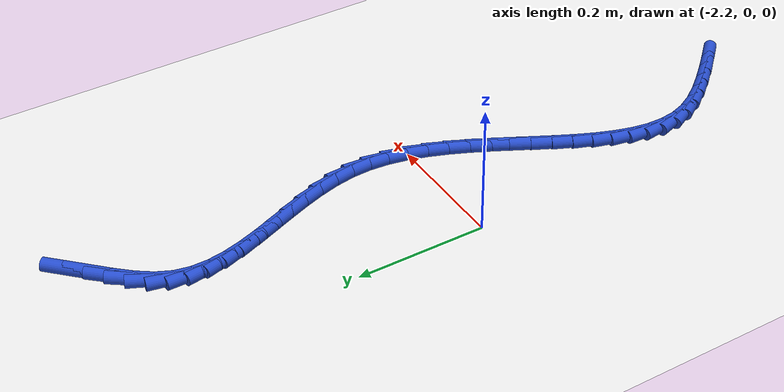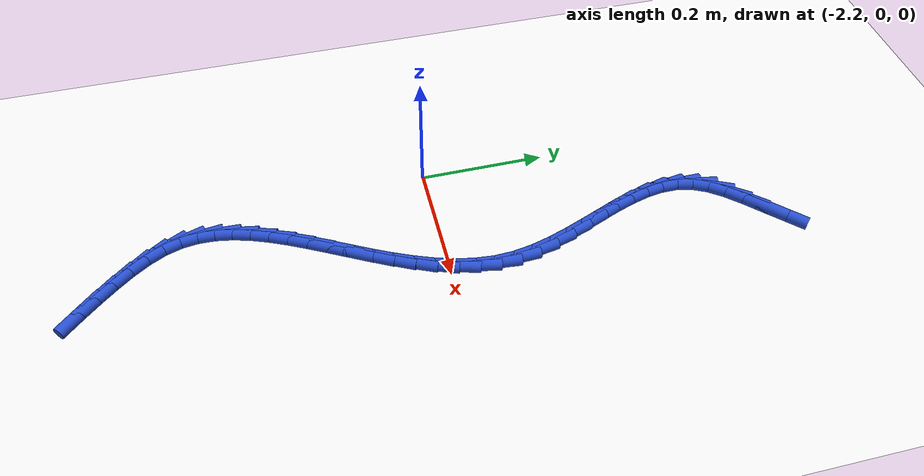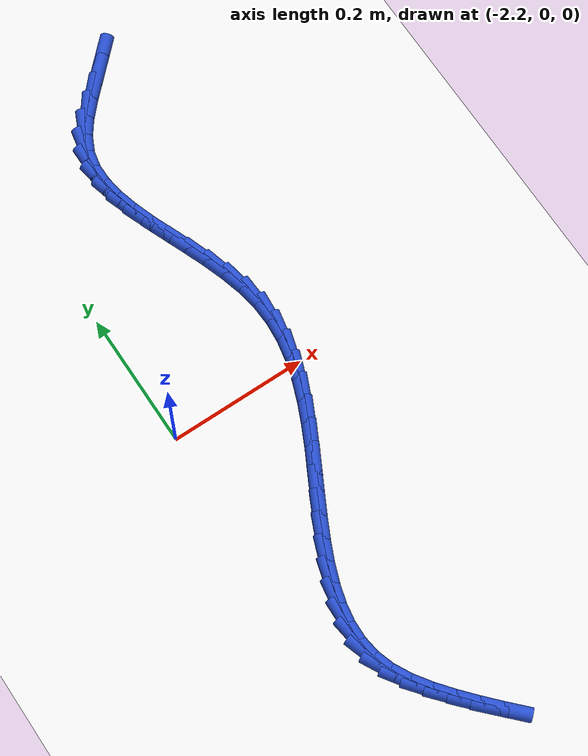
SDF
<sdf version="1.6">
 <world name="default">
  <model name="ground_plane">
   <static>1</static>
   <link name="link">
    <collision name="collision">
     <geometry><plane><normal>0 0 1</normal><size>100 100</size></plane></geometry>
     <surface><friction><ode><mu>100</mu><mu2>50</mu2></ode></friction></surface>
    </collision>
    <visual name="visual">
     <cast_shadows>0</cast_shadows>
     <geometry><plane><normal>0 0 1</normal><size>100 100</size></plane></geometry>
     <material>
      <script><uri>file://media/materials/scripts/gazebo.material</uri><name>Gazebo/WhiteGlow</name></script>
     </material>
    </visual>
   </link>
  </model>
  <model name="line">
   <link name="link_100">
    <pose>-1.9871449884132277 0.5292139198535633 0.01 0 1.57 0.7855690518795939</pose>
    <collision name="collision">
     <geometry><cylinder><radius>0.01</radius><length>0.08</length></cylinder></geometry>
    </collision>
    <visual name="visual">
     <material>
      <script><name>Gazebo/Blue</name><uri>file://media/materials/scripts/gazebo.material</uri></script>
     </material>
     <geometry><cylinder><radius>0.01</radius><length>0.08</length></cylinder></geometry>
    </visual>
   </link>
   <link name="link_101">
    <pose>-2.0093141122908245 0.5070372177850073 0.01 0 1.57 0.7847143369758246</pose>
    <collision name="collision">
     <geometry><cylinder><radius>0.01</radius><length>0.08</length></cylinder></geometry>
    </collision>
    <visual name="visual">
     <material>
      <script><name>Gazebo/Blue</name><uri>file://media/materials/scripts/gazebo.material</uri></script>
     </material>
     <geometry><cylinder><radius>0.01</radius><length>0.08</length></cylinder></geometry>
    </visual>
   </link>
   <link name="link_102">
    <pose>-2.0312313401335857 0.4851499446220889 0.01 0 1.57 0.8341021996968034</pose>
    <collision name="collision">
     <geometry><cylinder><radius>0.01</radius><length>0.08</length></cylinder></geometry>
    </collision>
    <visual name="visual">
     <material>
      <script><name>Gazebo/Blue</name><uri>file://media/materials/scripts/gazebo.material</uri></script>
     </material>
     <geometry><cylinder><radius>0.01</radius><length>0.08</length></cylinder></geometry>
    </visual>
   </link>
   <link name="link_103">
    <pose>-2.051228808603611 0.463103129157674 0.01 0 1.57 0.9439300058625477</pose>
    <collision name="collision">
     <geometry><cylinder><radius>0.01</radius><length>0.08</length></cylinder></geometry>
    </collision>
    <visual name="visual">
     <material>
      <script><name>Gazebo/Blue</name><uri>file://media/materials/scripts/gazebo.material</uri></script>
     </material>
     <geometry><cylinder><radius>0.01</radius><length>0.08</length></cylinder></geometry>
    </visual>
   </link>
   <link name="link_104">
    <pose>-2.067638654362998 0.4404478001846282 0.01 0 1.57 1.1306339617237116</pose>
    <collision name="collision">
     <geometry><cylinder><radius>0.01</radius><length>0.08</length></cylinder></geometry>
    </collision>
    <visual name="visual">
     <material>
      <script><name>Gazebo/Blue</name><uri>file://media/materials/scripts/gazebo.material</uri></script>
     </material>
     <geometry><cylinder><radius>0.01</radius><length>0.08</length></cylinder></geometry>
    </visual>
   </link>
   <link name="link_105">
    <pose>-2.078805559761731 0.4167378090143989 0.01 0 1.57 1.366408082037426</pose>
    <collision name="collision">
     <geometry><cylinder><radius>0.01</radius><length>0.08</length></cylinder></geometry>
    </collision>
    <visual name="visual">
     <material>
      <script><name>Gazebo/Blue</name><uri>file://media/materials/scripts/gazebo.material</uri></script>
     </material>
     <geometry><cylinder><radius>0.01</radius><length>0.08</length></cylinder></geometry>
    </visual>
   </link>
   <link name="link_106">
    <pose>-2.0839886771243714 0.39173274366403055 0.01 0 1.57 -1.5699439324491677</pose>
    <collision name="collision">
     <geometry><cylinder><radius>0.01</radius><length>0.08</length></cylinder></geometry>
    </collision>
    <visual name="visual">
     <material>
      <script><name>Gazebo/Blue</name><uri>file://media/materials/scripts/gazebo.material</uri></script>
     </material>
     <geometry><cylinder><radius>0.01</radius><length>0.08</length></cylinder></geometry>
    </visual>
   </link>
   <link name="link_107">
    <pose>-2.0839663454388377 0.3655339775213246 0.01 0 1.57 -1.4141204007534136</pose>
    <collision name="collision">
     <geometry><cylinder><radius>0.01</radius><length>0.08</length></cylinder></geometry>
    </collision>
    <visual name="visual">
     <material>
      <script><name>Gazebo/Blue</name><uri>file://media/materials/scripts/gazebo.material</uri></script>
     </material>
     <geometry><cylinder><radius>0.01</radius><length>0.08</length></cylinder></geometry>
    </visual>
   </link>
   <link name="link_108">
    <pose>-2.0796602486122597 0.3382751335965549 0.01 0 1.57 -1.3051626287560112</pose>
    <collision name="collision">
     <geometry><cylinder><radius>0.01</radius><length>0.08</length></cylinder></geometry>
    </collision>
    <visual name="visual">
     <material>
      <script><name>Gazebo/Blue</name><uri>file://media/materials/scripts/gazebo.material</uri></script>
     </material>
     <geometry><cylinder><radius>0.01</radius><length>0.08</length></cylinder></geometry>
    </visual>
   </link>
   <link name="link_109">
    <pose>-2.071992070551767 0.3100898348999965 0.01 0 1.57 -1.235160076850239</pose>
    <collision name="collision">
     <geometry><cylinder><radius>0.01</radius><length>0.08</length></cylinder></geometry>
    </collision>
    <visual name="visual">
     <material>
      <script><name>Gazebo/Blue</name><uri>file://media/materials/scripts/gazebo.material</uri></script>
     </material>
     <geometry><cylinder><radius>0.01</radius><length>0.08</length></cylinder></geometry>
    </visual>
   </link>
   <link name="link_110">
    <pose>-2.06188349516449 0.2811117044419232 0.01 0 1.57 -1.1969290607670187</pose>
    <collision name="collision">
     <geometry><cylinder><radius>0.01</radius><length>0.08</length></cylinder></geometry>
    </collision>
    <visual name="visual">
     <material>
      <script><name>Gazebo/Blue</name><uri>file://media/materials/scripts/gazebo.material</uri></script>
     </material>
     <geometry><cylinder><radius>0.01</radius><length>0.08</length></cylinder></geometry>
    </visual>
   </link>
   <link name="link_111">
    <pose>-2.0502562063575582 0.2514743652326094 0.01 0 1.57 -1.185749715621709</pose>
    <collision name="collision">
     <geometry><cylinder><radius>0.01</radius><length>0.08</length></cylinder></geometry>
    </collision>
    <visual name="visual">
     <material>
      <script><name>Gazebo/Blue</name><uri>file://media/materials/scripts/gazebo.material</uri></script>
     </material>
     <geometry><cylinder><radius>0.01</radius><length>0.08</length></cylinder></geometry>
    </visual>
   </link>
   <link name="link_112">
    <pose>-2.0380318880381028 0.22131144028232888 0.01 0 1.57 -1.1994159429463889</pose>
    <collision name="collision">
     <geometry><cylinder><radius>0.01</radius><length>0.08</length></cylinder></geometry>
    </collision>
    <visual name="visual">
     <material>
      <script><name>Gazebo/Blue</name><uri>file://media/materials/scripts/gazebo.material</uri></script>
     </material>
     <geometry><cylinder><radius>0.01</radius><length>0.08</length></cylinder></geometry>
    </visual>
   </link>
   <link name="link_113">
    <pose>-2.0261322241132516 0.19075655260135654 0.01 0 1.57 -1.2379227855006663</pose>
    <collision name="collision">
     <geometry><cylinder><radius>0.01</radius><length>0.08</length></cylinder></geometry>
    </collision>
    <visual name="visual">
     <material>
      <script><name>Gazebo/Blue</name><uri>file://media/materials/scripts/gazebo.material</uri></script>
     </material>
     <geometry><cylinder><radius>0.01</radius><length>0.08</length></cylinder></geometry>
    </visual>
   </link>
   <link name="link_114">
    <pose>-2.015478898490137 0.1599433251999665 0.01 0 1.57 -1.3031103160367798</pose>
    <collision name="collision">
     <geometry><cylinder><radius>0.01</radius><length>0.08</length></cylinder></geometry>
    </collision>
    <visual name="visual">
     <material>
      <script><name>Gazebo/Blue</name><uri>file://media/materials/scripts/gazebo.material</uri></script>
     </material>
     <geometry><cylinder><radius>0.01</radius><length>0.08</length></cylinder></geometry>
    </visual>
   </link>
   <link name="link_115">
    <pose>-2.0069935950758873 0.12900538108843249 0.01 0 1.57 -1.3980835306301187</pose>
    <collision name="collision">
     <geometry><cylinder><radius>0.01</radius><length>0.08</length></cylinder></geometry>
    </collision>
    <visual name="visual">
     <material>
      <script><name>Gazebo/Blue</name><uri>file://media/materials/scripts/gazebo.material</uri></script>
     </material>
     <geometry><cylinder><radius>0.01</radius><length>0.08</length></cylinder></geometry>
    </visual>
   </link>
   <link name="link_116">
    <pose>-2.0015979977776324 0.09807634327702949 0.01 0 1.57 -1.5240660896778124</pose>
    <collision name="collision">
     <geometry><cylinder><radius>0.01</radius><length>0.08</length></cylinder></geometry>
    </collision>
    <visual name="visual">
     <material>
      <script><name>Gazebo/Blue</name><uri>file://media/materials/scripts/gazebo.material</uri></script>
     </material>
     <geometry><cylinder><radius>0.01</radius><length>0.08</length></cylinder></geometry>
    </visual>
   </link>
   <link name="link_117">
    <pose>-2.0001580755844617 0.06728527516510942 0.01 0 1.57 1.4867017220664276</pose>
    <collision name="collision">
     <geometry><cylinder><radius>0.01</radius><length>0.08</length></cylinder></geometry>
    </collision>
    <visual name="visual">
     <material>
      <script><name>Gazebo/Blue</name><uri>file://media/materials/scripts/gazebo.material</uri></script>
     </material>
     <geometry><cylinder><radius>0.01</radius><length>0.08</length></cylinder></geometry>
    </visual>
   </link>
   <link name="link_118">
    <pose>-2.00273659123792 0.03669550716510217 0.01 0 1.57 1.3739794321196999</pose>
    <collision name="collision">
     <geometry><cylinder><radius>0.01</radius><length>0.08</length></cylinder></geometry>
    </collision>
    <visual name="visual">
     <material>
      <script><name>Gazebo/Blue</name><uri>file://media/materials/scripts/gazebo.material</uri></script>
     </material>
     <geometry><cylinder><radius>0.01</radius><length>0.08</length></cylinder></geometry>
    </visual>
   </link>
   <link name="link_119">
    <pose>-2.0087932123668595 0.0063210134459110116 0.01 0 1.57 1.2812944122180783</pose>
    <collision name="collision">
     <geometry><cylinder><radius>0.01</radius><length>0.08</length></cylinder></geometry>
    </collision>
    <visual name="visual">
     <material>
      <script><name>Gazebo/Blue</name><uri>file://media/materials/scripts/gazebo.material</uri></script>
     </material>
     <geometry><cylinder><radius>0.01</radius><length>0.08</length></cylinder></geometry>
    </visual>
   </link>
   <link name="link_120">
    <pose>-2.017772946815093 -0.023825431554588793 0.01 0 1.57 1.2081251126276555</pose>
    <collision name="collision">
     <geometry><cylinder><radius>0.01</radius><length>0.08</length></cylinder></geometry>
    </collision>
    <visual name="visual">
     <material>
      <script><name>Gazebo/Blue</name><uri>file://media/materials/scripts/gazebo.material</uri></script>
     </material>
     <geometry><cylinder><radius>0.01</radius><length>0.08</length></cylinder></geometry>
    </visual>
   </link>
   <link name="link_121">
    <pose>-2.0291208024264358 -0.05373105339852339 0.01 0 1.57 1.1530703676752991</pose>
    <collision name="collision">
     <geometry><cylinder><radius>0.01</radius><length>0.08</length></cylinder></geometry>
    </collision>
    <visual name="visual">
     <material>
      <script><name>Gazebo/Blue</name><uri>file://media/materials/scripts/gazebo.material</uri></script>
     </material>
     <geometry><cylinder><radius>0.01</radius><length>0.08</length></cylinder></geometry>
    </visual>
   </link>
   <link name="link_122">
    <pose>-2.042281787044702 -0.08338307764801833 0.01 0 1.57 1.1146278254172337</pose>
    <collision name="collision">
     <geometry><cylinder><radius>0.01</radius><length>0.08</length></cylinder></geometry>
    </collision>
    <visual name="visual">
     <material>
      <script><name>Gazebo/Blue</name><uri>file://media/materials/scripts/gazebo.material</uri></script>
     </material>
     <geometry><cylinder><radius>0.01</radius><length>0.08</length></cylinder></geometry>
    </visual>
   </link>
   <link name="link_123">
    <pose>-2.056700908513706 -0.11276872986519944 0.01 0 1.57 1.091631830433214</pose>
    <collision name="collision">
     <geometry><cylinder><radius>0.01</radius><length>0.08</length></cylinder></geometry>
    </collision>
    <visual name="visual">
     <material>
      <script><name>Gazebo/Blue</name><uri>file://media/materials/scripts/gazebo.material</uri></script>
     </material>
     <geometry><cylinder><radius>0.01</radius><length>0.08</length></cylinder></geometry>
    </visual>
   </link>
   <link name="link_124">
    <pose>-2.07182317467726 -0.14187523561219212 0.01 0 1.57 1.0834732752518237</pose>
    <collision name="collision">
     <geometry><cylinder><radius>0.01</radius><length>0.08</length></cylinder></geometry>
    </collision>
    <visual name="visual">
     <material>
      <script><name>Gazebo/Blue</name><uri>file://media/materials/scripts/gazebo.material</uri></script>
     </material>
     <geometry><cylinder><radius>0.01</radius><length>0.08</length></cylinder></geometry>
    </visual>
   </link>
   <link name="link_125">
    <pose>-2.08709359337918 -0.17068982045112296 0.01 0 1.57 1.09021639334676</pose>
    <collision name="collision">
     <geometry><cylinder><radius>0.01</radius><length>0.08</length></cylinder></geometry>
    </collision>
    <visual name="visual">
     <material>
      <script><name>Gazebo/Blue</name><uri>file://media/materials/scripts/gazebo.material</uri></script>
     </material>
     <geometry><cylinder><radius>0.01</radius><length>0.08</length></cylinder></geometry>
    </visual>
   </link>
   <link name="link_126">
    <pose>-2.101957172463279 -0.199199709944116 0.01 0 1.57 1.112682079673069</pose>
    <collision name="collision">
     <geometry><cylinder><radius>0.01</radius><length>0.08</length></cylinder></geometry>
    </collision>
    <visual name="visual">
     <material>
      <script><name>Gazebo/Blue</name><uri>file://media/materials/scripts/gazebo.material</uri></script>
     </material>
     <geometry><cylinder><radius>0.01</radius><length>0.08</length></cylinder></geometry>
    </visual>
   </link>
   <link name="link_127">
    <pose>-2.1158589197733715 -0.22739212965329775 0.01 0 1.57 1.1525200208357471</pose>
    <collision name="collision">
     <geometry><cylinder><radius>0.01</radius><length>0.08</length></cylinder></geometry>
    </collision>
    <visual name="visual">
     <material>
      <script><name>Gazebo/Blue</name><uri>file://media/materials/scripts/gazebo.material</uri></script>
     </material>
     <geometry><cylinder><radius>0.01</radius><length>0.08</length></cylinder></geometry>
    </visual>
   </link>
   <link name="link_128">
    <pose>-2.128243843153271 -0.2552543051407937 0.01 0 1.57 1.2122351893412535</pose>
    <collision name="collision">
     <geometry><cylinder><radius>0.01</radius><length>0.08</length></cylinder></geometry>
    </collision>
    <visual name="visual">
     <material>
      <script><name>Gazebo/Blue</name><uri>file://media/materials/scripts/gazebo.material</uri></script>
     </material>
     <geometry><cylinder><radius>0.01</radius><length>0.08</length></cylinder></geometry>
    </visual>
   </link>
   <link name="link_129">
    <pose>-2.1385569504467927 -0.2827734619687297 0.01 0 1.57 1.295039694176725</pose>
    <collision name="collision">
     <geometry><cylinder><radius>0.01</radius><length>0.08</length></cylinder></geometry>
    </collision>
    <visual name="visual">
     <material>
      <script><name>Gazebo/Blue</name><uri>file://media/materials/scripts/gazebo.material</uri></script>
     </material>
     <geometry><cylinder><radius>0.01</radius><length>0.08</length></cylinder></geometry>
    </visual>
   </link>
   <link name="link_130">
    <pose>-2.1462432494977497 -0.3099368256992313 0.01 0 1.57 1.404242730380977</pose>
    <collision name="collision">
     <geometry><cylinder><radius>0.01</radius><length>0.08</length></cylinder></geometry>
    </collision>
    <visual name="visual">
     <material>
      <script><name>Gazebo/Blue</name><uri>file://media/materials/scripts/gazebo.material</uri></script>
     </material>
     <geometry><cylinder><radius>0.01</radius><length>0.08</length></cylinder></geometry>
    </visual>
   </link>
   <link name="link_131">
    <pose>-2.1507477481499566 -0.3367316218944241 0.01 0 1.57 1.541739543027803</pose>
    <collision name="collision">
     <geometry><cylinder><radius>0.01</radius><length>0.08</length></cylinder></geometry>
    </collision>
    <visual name="visual">
     <material>
      <script><name>Gazebo/Blue</name><uri>file://media/materials/scripts/gazebo.material</uri></script>
     </material>
     <geometry><cylinder><radius>0.01</radius><length>0.08</length></cylinder></geometry>
    </visual>
   </link>
   <link name="link_132">
    <pose>-2.151515454247227 -0.36314507611643443 0.01 0 1.57 -1.4361747635760547</pose>
    <collision name="collision">
     <geometry><cylinder><radius>0.01</radius><length>0.08</length></cylinder></geometry>
    </collision>
    <visual name="visual">
     <material>
      <script><name>Gazebo/Blue</name><uri>file://media/materials/scripts/gazebo.material</uri></script>
     </material>
     <geometry><cylinder><radius>0.01</radius><length>0.08</length></cylinder></geometry>
    </visual>
   </link>
   <link name="link_133">
    <pose>-2.1479913756333753 -0.38916441392738677 0.01 0 1.57 -1.2550337374220086</pose>
    <collision name="collision">
     <geometry><cylinder><radius>0.01</radius><length>0.08</length></cylinder></geometry>
    </collision>
    <visual name="visual">
     <material>
      <script><name>Gazebo/Blue</name><uri>file://media/materials/scripts/gazebo.material</uri></script>
     </material>
     <geometry><cylinder><radius>0.01</radius><length>0.08</length></cylinder></geometry>
    </visual>
   </link>
   <link name="link_134">
    <pose>-2.139624011857871 -0.41477671145886996 0.01 0 1.57 -1.087487561660636</pose>
    <collision name="collision">
     <geometry><cylinder><radius>0.01</radius><length>0.08</length></cylinder></geometry>
    </collision>
    <visual name="visual">
     <material>
      <script><name>Gazebo/Blue</name><uri>file://media/materials/scripts/gazebo.material</uri></script>
     </material>
     <geometry><cylinder><radius>0.01</radius><length>0.08</length></cylinder></geometry>
    </visual>
   </link>
   <link name="link_135">
    <pose>-2.126414900254015 -0.4399453771163818 0.01 0 1.57 -0.9696866067909173</pose>
    <collision name="collision">
     <geometry><cylinder><radius>0.01</radius><length>0.08</length></cylinder></geometry>
    </collision>
    <visual name="visual">
     <material>
      <script><name>Gazebo/Blue</name><uri>file://media/materials/scripts/gazebo.material</uri></script>
     </material>
     <geometry><cylinder><radius>0.01</radius><length>0.08</length></cylinder></geometry>
    </visual>
   </link>
   <link name="link_136">
    <pose>-2.1095182045512453 -0.464584491670623 0.01 0 1.57 -0.8942290730171135</pose>
    <collision name="collision">
     <geometry><cylinder><radius>0.01</radius><length>0.08</length></cylinder></geometry>
    </collision>
    <visual name="visual">
     <material>
      <script><name>Gazebo/Blue</name><uri>file://media/materials/scripts/gazebo.material</uri></script>
     </material>
     <geometry><cylinder><radius>0.01</radius><length>0.08</length></cylinder></geometry>
    </visual>
   </link>
   <link name="link_137">
    <pose>-2.0902321811214652 -0.48860196932412564 0.01 0 1.57 -0.8518500776050728</pose>
    <collision name="collision">
     <geometry><cylinder><radius>0.01</radius><length>0.08</length></cylinder></geometry>
    </collision>
    <visual name="visual">
     <material>
      <script><name>Gazebo/Blue</name><uri>file://media/materials/scripts/gazebo.material</uri></script>
     </material>
     <geometry><cylinder><radius>0.01</radius><length>0.08</length></cylinder></geometry>
    </visual>
   </link>
   <link name="link_138">
    <pose>-2.0698344119602727 -0.5119082378837136 0.01 0 1.57 -0.8262314384664976</pose>
    <collision name="collision">
     <geometry><cylinder><radius>0.01</radius><length>0.08</length></cylinder></geometry>
    </collision>
    <visual name="visual">
     <material>
      <script><name>Gazebo/Blue</name><uri>file://media/materials/scripts/gazebo.material</uri></script>
     </material>
     <geometry><cylinder><radius>0.01</radius><length>0.08</length></cylinder></geometry>
    </visual>
   </link>
   <link name="link_139">
    <pose>-2.0490317685429758 -0.5344831125172225 0.01 0 1.57 -0.8032893376389015</pose>
    <collision name="collision">
     <geometry><cylinder><radius>0.01</radius><length>0.08</length></cylinder></geometry>
    </collision>
    <visual name="visual">
     <material>
      <script><name>Gazebo/Blue</name><uri>file://media/materials/scripts/gazebo.material</uri></script>
     </material>
     <geometry><cylinder><radius>0.01</radius><length>0.08</length></cylinder></geometry>
    </visual>
   </link>
  </model>
 </world>
</sdf>
